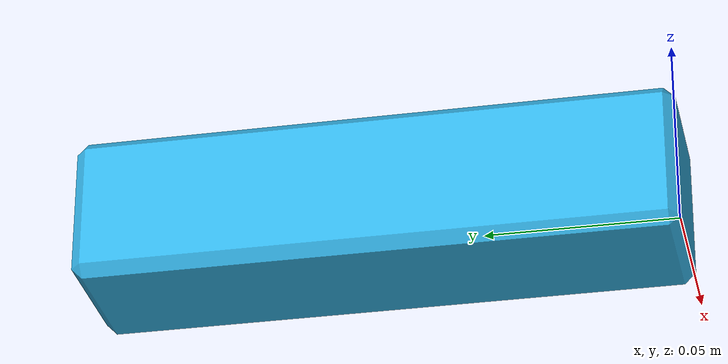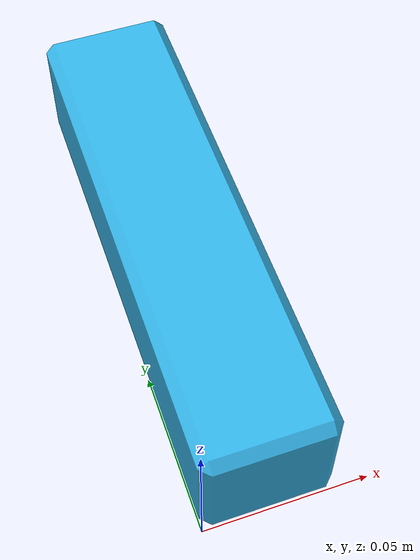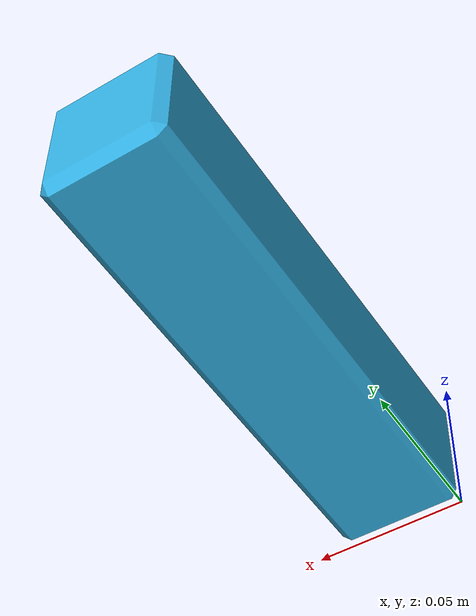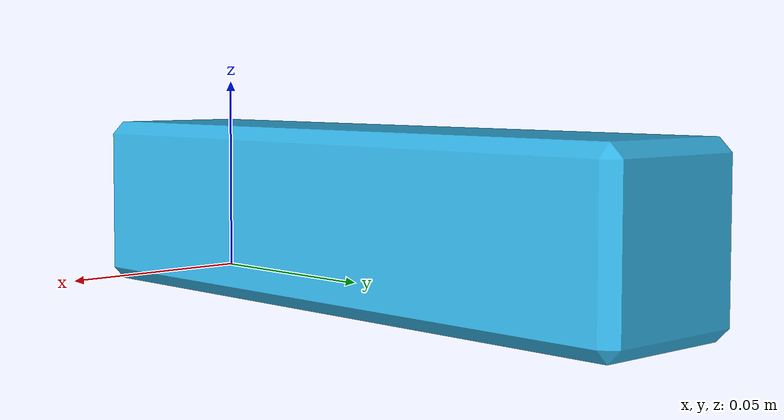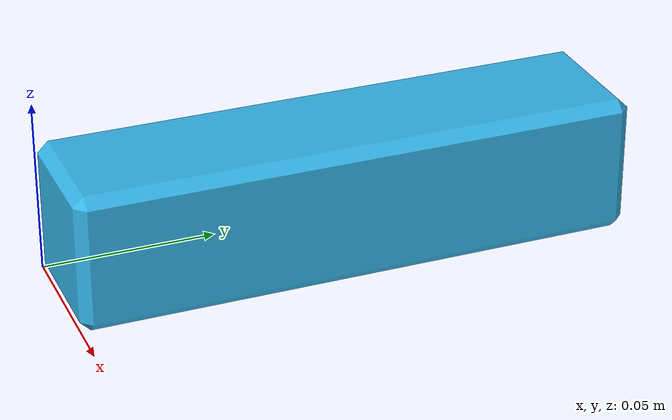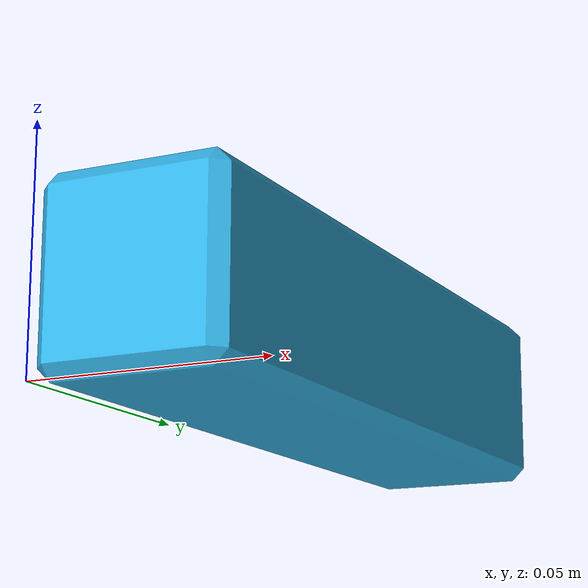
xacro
<?xml version="1.0" ?>
<robot name="Tetris_I" xmlns:xacro="http://www.ros.org/wiki/xacro">

<xacro:include filename="$(find Tetris_I_description)/urdf/materials.xacro" />

<material name="color">
  <color rgba=".2, .7, .9 1.000"/>
</material>

<link name="base_link">
  <inertial>
    <origin xyz="0.02 0.08 0.02" rpy="0 0 0"/>
    <mass value="0.26693344"/>
    <inertia ixx="0.000599" iyy="7e-05" izz="0.000599" ixy="0.0" iyz="0.0" ixz="0.0"/>
  </inertial>
  <visual>
    <origin xyz="0 0 0" rpy="0 0 0"/>
    <geometry>
      <mesh filename="package://Tetris_I_description/meshes/base_link.stl" scale="0.001 0.001 0.001"/>
    </geometry>
    <material name="color"/>
  </visual>
  <collision>
    <origin xyz=".02 .08 .02" rpy="0 0 0"/>
    <geometry>
      <box size="0.04 0.16 0.04"/> <!-- Adjust the size of the first box -->
      <origin xyz="0.02 0.08 0.02" rpy="0 0 0"/> <!-- Offset the first box by (0.05, 0.05, 0.05) -->
    </geometry>
  </collision>
</link>

</robot>

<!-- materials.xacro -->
<robot name="Tetris_I" xmlns:xacro="http://www.ros.org/wiki/xacro" >

<material name="silver">
  <color rgba="0.700 0.700 0.700 1.000"/>
</material>

</robot>
